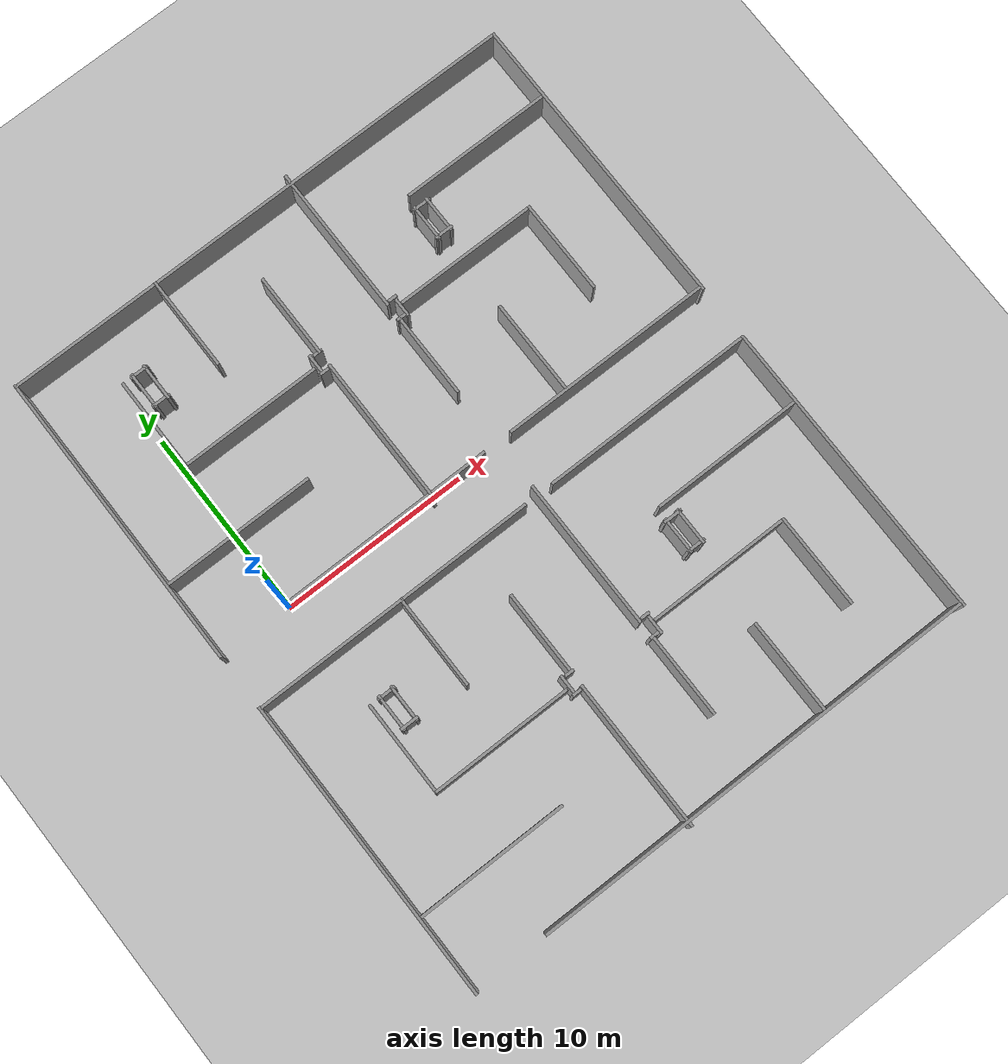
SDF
<sdf version="1.7">
 <world name="default">
  <model name="ground_plane">
   <static>1</static>
   <link name="link">
    <collision name="collision">
     <geometry><plane><normal>0 0 1</normal><size>100 100</size></plane></geometry>
     <surface>
      <contact><collide_bitmask>65535</collide_bitmask></contact>
      <friction><ode><mu>100</mu><mu2>50</mu2></ode></friction>
     </surface>
    </collision>
    <visual name="visual">
     <cast_shadows>0</cast_shadows>
     <geometry><plane><normal>0 0 1</normal><size>100 100</size></plane></geometry>
     <material>
      <script><uri>file://media/materials/scripts/gazebo.material</uri><name>Gazebo/Grey</name></script>
     </material>
    </visual>
   </link>
  </model>
  <model name="myroom_long_start">
   <pose>10.2269 7.86848 0 0 -0 0</pose>
   <link name="Wall_0_0">
    <collision name="Wall_0_0_Collision">
     <geometry><box><size>11.25 0.15 2.5</size></box></geometry>
     <pose>0 0 1.25 0 -0 0</pose>
    </collision>
    <visual name="Wall_0_0_Visual">
     <pose>0 0 1.25 0 -0 0</pose>
     <geometry><box><size>11.25 0.15 2.5</size></box></geometry>
     <material>
      <script><uri>file://media/materials/scripts/gazebo.material</uri><name>Gazebo/Grey</name></script>
      <ambient>1 1 1 1</ambient>
     </material>
     <meta><layer>0</layer></meta>
    </visual>
    <pose>-4.42088 -7.96278 0 0 -0 0</pose>
   </link>
   <link name="Wall_0_1">
    <collision name="Wall_0_1_Collision">
     <geometry><box><size>11.25 0.15 2.5</size></box></geometry>
     <pose>0 0 1.25 0 -0 0</pose>
    </collision>
    <visual name="Wall_0_1_Visual">
     <pose>0 0 1.25 0 -0 0</pose>
     <geometry><box><size>11.25 0.15 2.5</size></box></geometry>
     <material>
      <script><uri>file://media/materials/scripts/gazebo.material</uri><name>Gazebo/Grey</name></script>
      <ambient>1 1 1 1</ambient>
     </material>
     <meta><layer>0</layer></meta>
    </visual>
    <pose>8.32912 -7.96278 0 0 -0 0</pose>
   </link>
   <link name="Wall_10">
    <collision name="Wall_10_Collision">
     <geometry><box><size>8 0.15 2.5</size></box></geometry>
     <pose>0 0 1.25 0 -0 0</pose>
    </collision>
    <visual name="Wall_10_Visual">
     <pose>0 0 1.25 0 -0 0</pose>
     <geometry><box><size>8 0.15 2.5</size></box></geometry>
     <material>
      <script><uri>file://media/materials/scripts/gazebo.material</uri><name>Gazebo/Grey</name></script>
      <ambient>1 1 1 1</ambient>
     </material>
     <meta><layer>0</layer></meta>
    </visual>
    <pose>-9.91866 -3.96914 0 0 -0 0</pose>
   </link>
   <link name="Wall_12">
    <collision name="Wall_12_Collision">
     <geometry><box><size>8 0.15 2.5</size></box></geometry>
     <pose>0 0 1.25 0 -0 0</pose>
    </collision>
    <visual name="Wall_12_Visual">
     <pose>0 0 1.25 0 -0 0</pose>
     <geometry><box><size>8 0.15 2.5</size></box></geometry>
     <material>
      <script><uri>file://media/materials/scripts/gazebo.material</uri><name>Gazebo/Grey</name></script>
      <ambient>1 1 1 1</ambient>
     </material>
     <meta><layer>0</layer></meta>
    </visual>
    <pose>-1.94773 -4.26972 0 0 -0 -1.5708</pose>
   </link>
   <link name="Wall_14">
    <collision name="Wall_14_Collision">
     <geometry><box><size>8 0.15 2.5</size></box></geometry>
     <pose>0 0 1.25 0 -0 0</pose>
    </collision>
    <visual name="Wall_14_Visual">
     <pose>0 0 1.25 0 -0 0</pose>
     <geometry><box><size>8 0.15 2.5</size></box></geometry>
     <material>
      <script><uri>file://media/materials/scripts/gazebo.material</uri><name>Gazebo/Grey</name></script>
      <ambient>1 1 1 1</ambient>
     </material>
     <meta><layer>0</layer></meta>
    </visual>
    <pose>1.93832 4.2697 0 0 -0 -1.5708</pose>
   </link>
   <link name="Wall_16">
    <collision name="Wall_16_Collision">
     <geometry><box><size>5 0.15 2.5</size></box></geometry>
     <pose>0 0 1.25 0 -0 0</pose>
    </collision>
    <visual name="Wall_16_Visual">
     <pose>0 0 1.25 0 -0 0</pose>
     <geometry><box><size>5 0.15 2.5</size></box></geometry>
     <material>
      <script><uri>file://media/materials/scripts/gazebo.material</uri><name>Gazebo/Grey</name></script>
      <ambient>1 1 1 1</ambient>
     </material>
     <meta><layer>0</layer></meta>
    </visual>
    <pose>-10.0191 2.39188 0 0 -0 -1.5708</pose>
   </link>
   <link name="Wall_18">
    <collision name="Wall_18_Collision">
     <geometry><box><size>5 0.15 2.5</size></box></geometry>
     <pose>0 0 1.25 0 -0 0</pose>
    </collision>
    <visual name="Wall_18_Visual">
     <pose>0 0 1.25 0 -0 0</pose>
     <geometry><box><size>5 0.15 2.5</size></box></geometry>
     <material>
      <script><uri>file://media/materials/scripts/gazebo.material</uri><name>Gazebo/Grey</name></script>
      <ambient>1 1 1 1</ambient>
     </material>
     <meta><layer>0</layer></meta>
    </visual>
    <pose>10.0409 -2.44812 0 0 -0 -1.5708</pose>
   </link>
   <link name="Wall_2">
    <collision name="Wall_2_Collision">
     <geometry><box><size>16 0.15 2.5</size></box></geometry>
     <pose>0 0 1.25 0 -0 0</pose>
    </collision>
    <visual name="Wall_2_Visual">
     <pose>0 0 1.25 0 -0 0</pose>
     <geometry><box><size>16 0.15 2.5</size></box></geometry>
     <material>
      <script><uri>file://media/materials/scripts/gazebo.material</uri><name>Gazebo/Grey</name></script>
      <ambient>1 1 1 1</ambient>
     </material>
     <meta><layer>0</layer></meta>
    </visual>
    <pose>-13.999 -0.124192 0 0 -0 -1.5708</pose>
   </link>
   <link name="Wall_20">
    <collision name="Wall_20_Collision">
     <geometry><box><size>5 0.15 2.5</size></box></geometry>
     <pose>0 0 1.25 0 -0 0</pose>
    </collision>
    <visual name="Wall_20_Visual">
     <pose>0 0 1.25 0 -0 0</pose>
     <geometry><box><size>5 0.15 2.5</size></box></geometry>
     <material>
      <script><uri>file://media/materials/scripts/gazebo.material</uri><name>Gazebo/Grey</name></script>
      <ambient>1 1 1 1</ambient>
     </material>
     <meta><layer>0</layer></meta>
    </visual>
    <pose>-5.9791 5.35188 0 0 -0 -1.5708</pose>
   </link>
   <link name="Wall_22">
    <collision name="Wall_22_Collision">
     <geometry><box><size>5 0.15 2.5</size></box></geometry>
     <pose>0 0 1.25 0 -0 0</pose>
    </collision>
    <visual name="Wall_22_Visual">
     <pose>0 0 1.25 0 -0 0</pose>
     <geometry><box><size>5 0.15 2.5</size></box></geometry>
     <material>
      <script><uri>file://media/materials/scripts/gazebo.material</uri><name>Gazebo/Grey</name></script>
      <ambient>1 1 1 1</ambient>
     </material>
     <meta><layer>0</layer></meta>
    </visual>
    <pose>6.0009 -5.40812 0 0 -0 -1.5708</pose>
   </link>
   <link name="Wall_24">
    <collision name="Wall_24_Collision">
     <geometry><box><size>7.5 0.15 2.5</size></box></geometry>
     <pose>0 0 1.25 0 -0 0</pose>
    </collision>
    <visual name="Wall_24_Visual">
     <pose>0 0 1.25 0 -0 0</pose>
     <geometry><box><size>7.5 0.15 2.5</size></box></geometry>
     <material>
      <script><uri>file://media/materials/scripts/gazebo.material</uri><name>Gazebo/Grey</name></script>
      <ambient>1 1 1 1</ambient>
     </material>
     <meta><layer>0</layer></meta>
    </visual>
    <pose>-6.30686 -0.036992 0 0 -0 0</pose>
   </link>
   <link name="Wall_26">
    <collision name="Wall_26_Collision">
     <geometry><box><size>7.5 0.15 2.5</size></box></geometry>
     <pose>0 0 1.25 0 -0 0</pose>
    </collision>
    <visual name="Wall_26_Visual">
     <pose>0 0 1.25 0 -0 0</pose>
     <geometry><box><size>7.5 0.15 2.5</size></box></geometry>
     <material>
      <script><uri>file://media/materials/scripts/gazebo.material</uri><name>Gazebo/Grey</name></script>
      <ambient>1 1 1 1</ambient>
     </material>
     <meta><layer>0</layer></meta>
    </visual>
    <pose>6.23216 -0.017388 0 0 -0 0</pose>
   </link>
   <link name="Wall_28">
    <collision name="Wall_28_Collision">
     <geometry><box><size>4.5 0.15 2.5</size></box></geometry>
     <pose>0 0 1.25 0 -0 0</pose>
    </collision>
    <visual name="Wall_28_Visual">
     <pose>0 0 1.25 0 -0 0</pose>
     <geometry><box><size>4.5 0.15 2.5</size></box></geometry>
     <material>
      <script><uri>file://media/materials/scripts/gazebo.material</uri><name>Gazebo/Grey</name></script>
      <ambient>1 1 1 1</ambient>
     </material>
     <meta><layer>0</layer></meta>
    </visual>
    <pose>-1.92931 2.66336 0 0 -0 -1.5708</pose>
   </link>
   <link name="Wall_30">
    <collision name="Wall_30_Collision">
     <geometry><box><size>4.5 0.15 2.5</size></box></geometry>
     <pose>0 0 1.25 0 -0 0</pose>
    </collision>
    <visual name="Wall_30_Visual">
     <pose>0 0 1.25 0 -0 0</pose>
     <geometry><box><size>4.5 0.15 2.5</size></box></geometry>
     <material>
      <script><uri>file://media/materials/scripts/gazebo.material</uri><name>Gazebo/Grey</name></script>
      <ambient>1 1 1 1</ambient>
     </material>
     <meta><layer>0</layer></meta>
    </visual>
    <pose>1.97229 -2.7535 0 0 -0 -1.5708</pose>
   </link>
   <link name="Wall_32">
    <collision name="Wall_32_Collision">
     <geometry><box><size>0.5 0.15 2.5</size></box></geometry>
     <pose>0 0 1.25 0 -0 0</pose>
    </collision>
    <visual name="Wall_32_Visual">
     <pose>0 0 1.25 0 -0 0</pose>
     <geometry><box><size>0.5 0.15 2.5</size></box></geometry>
     <material>
      <script><uri>file://media/materials/scripts/gazebo.material</uri><name>Gazebo/Grey</name></script>
      <ambient>1 1 1 1</ambient>
     </material>
     <meta><layer>0</layer></meta>
    </visual>
    <pose>-2.30898 -0.421294 0 0 -0 0</pose>
   </link>
   <link name="Wall_34">
    <collision name="Wall_34_Collision">
     <geometry><box><size>1 0.15 2.5</size></box></geometry>
     <pose>0 0 1.25 0 -0 0</pose>
    </collision>
    <visual name="Wall_34_Visual">
     <pose>0 0 1.25 0 -0 0</pose>
     <geometry><box><size>1 0.15 2.5</size></box></geometry>
     <material>
      <script><uri>file://media/materials/scripts/gazebo.material</uri><name>Gazebo/Grey</name></script>
      <ambient>1 1 1 1</ambient>
     </material>
     <meta><layer>0</layer></meta>
    </visual>
    <pose>-2.40942 0.132494 0 0 -0 -1.5708</pose>
   </link>
   <link name="Wall_36">
    <collision name="Wall_36_Collision">
     <geometry><box><size>0.5 0.15 2.5</size></box></geometry>
     <pose>0 0 1.25 0 -0 0</pose>
    </collision>
    <visual name="Wall_36_Visual">
     <pose>0 0 1.25 0 -0 0</pose>
     <geometry><box><size>0.5 0.15 2.5</size></box></geometry>
     <material>
      <script><uri>file://media/materials/scripts/gazebo.material</uri><name>Gazebo/Grey</name></script>
      <ambient>1 1 1 1</ambient>
     </material>
     <meta><layer>0</layer></meta>
    </visual>
    <pose>-2.02952 0.481888 0 0 -0 0</pose>
   </link>
   <link name="Wall_38">
    <collision name="Wall_38_Collision">
     <geometry><box><size>0.5 0.15 2.5</size></box></geometry>
     <pose>0 0 1.25 0 -0 0</pose>
    </collision>
    <visual name="Wall_38_Visual">
     <pose>0 0 1.25 0 -0 0</pose>
     <geometry><box><size>0.5 0.15 2.5</size></box></geometry>
     <material>
      <script><uri>file://media/materials/scripts/gazebo.material</uri><name>Gazebo/Grey</name></script>
      <ambient>1 1 1 1</ambient>
     </material>
     <meta><layer>0</layer></meta>
    </visual>
    <pose>2.0697 -0.547396 0 0 -0 3.14159</pose>
   </link>
   <link name="Wall_4">
    <collision name="Wall_4_Collision">
     <geometry><box><size>28 0.15 2.5</size></box></geometry>
     <pose>0 0 1.25 0 -0 0</pose>
    </collision>
    <visual name="Wall_4_Visual">
     <pose>0 0 1.25 0 -0 0</pose>
     <geometry><box><size>28 0.15 2.5</size></box></geometry>
     <material>
      <script><uri>file://media/materials/scripts/gazebo.material</uri><name>Gazebo/Grey</name></script>
      <ambient>1 1 1 1</ambient>
     </material>
     <meta><layer>0</layer></meta>
    </visual>
    <pose>-0.05209 7.76604 0 0 -0 3.14159</pose>
   </link>
   <link name="Wall_40">
    <collision name="Wall_40_Collision">
     <geometry><box><size>1 0.15 2.5</size></box></geometry>
     <pose>0 0 1.25 0 -0 0</pose>
    </collision>
    <visual name="Wall_40_Visual">
     <pose>0 0 1.25 0 -0 0</pose>
     <geometry><box><size>1 0.15 2.5</size></box></geometry>
     <material>
      <script><uri>file://media/materials/scripts/gazebo.material</uri><name>Gazebo/Grey</name></script>
      <ambient>1 1 1 1</ambient>
     </material>
     <meta><layer>0</layer></meta>
    </visual>
    <pose>2.3863 -0.197994 0 0 -0 -1.5708</pose>
   </link>
   <link name="Wall_42">
    <collision name="Wall_42_Collision">
     <geometry><box><size>0.5 0.15 2.5</size></box></geometry>
     <pose>0 0 1.25 0 -0 0</pose>
    </collision>
    <visual name="Wall_42_Visual">
     <pose>0 0 1.25 0 -0 0</pose>
     <geometry><box><size>0.5 0.15 2.5</size></box></geometry>
     <material>
      <script><uri>file://media/materials/scripts/gazebo.material</uri><name>Gazebo/Grey</name></script>
      <ambient>1 1 1 1</ambient>
     </material>
     <meta><layer>0</layer></meta>
    </visual>
    <pose>2.28742 0.41876 0 0 -0 0</pose>
   </link>
   <link name="Wall_6">
    <collision name="Wall_6_Collision">
     <geometry><box><size>16 0.15 2.5</size></box></geometry>
     <pose>0 0 1.25 0 -0 0</pose>
    </collision>
    <visual name="Wall_6_Visual">
     <pose>0 0 1.25 0 -0 0</pose>
     <geometry><box><size>16 0.15 2.5</size></box></geometry>
     <material>
      <script><uri>file://media/materials/scripts/gazebo.material</uri><name>Gazebo/Grey</name></script>
      <ambient>1 1 1 1</ambient>
     </material>
     <meta><layer>0</layer></meta>
    </visual>
    <pose>13.999 -0.16442 0 0 -0 -1.5708</pose>
   </link>
   <link name="Wall_8">
    <collision name="Wall_8_Collision">
     <geometry><box><size>8 0.15 2.5</size></box></geometry>
     <pose>0 0 1.25 0 -0 0</pose>
    </collision>
    <visual name="Wall_8_Visual">
     <pose>0 0 1.25 0 -0 0</pose>
     <geometry><box><size>8 0.15 2.5</size></box></geometry>
     <material>
      <script><uri>file://media/materials/scripts/gazebo.material</uri><name>Gazebo/Grey</name></script>
      <ambient>1 1 1 1</ambient>
     </material>
     <meta><layer>0</layer></meta>
    </visual>
    <pose>9.91354 3.909 0 0 -0 0</pose>
   </link>
   <static>1</static>
  </model>
  <model name="half_wall">
   <pose>1.13136 13.7536 0 0 -0 0</pose>
   <link name="Wall_0">
    <collision name="Wall_0_Collision">
     <geometry><box><size>2 0.15 2.5</size></box></geometry>
     <pose>0 0 1.25 0 -0 0</pose>
    </collision>
    <visual name="Wall_0_Visual">
     <pose>0 0 1.25 0 -0 0</pose>
     <geometry><box><size>2 0.15 2.5</size></box></geometry>
     <material>
      <script><uri>file://media/materials/scripts/gazebo.material</uri><name>Gazebo/Grey</name></script>
      <ambient>1 1 1 1</ambient>
     </material>
     <meta><layer>0</layer></meta>
    </visual>
    <pose>-0.35 -1.9082 0 0 -0 1.5708</pose>
   </link>
   <link name="Wall_1">
    <collision name="Wall_1_Collision">
     <geometry><box><size>1 0.15 2.5</size></box></geometry>
     <pose>0 0 1.25 0 -0 0</pose>
    </collision>
    <visual name="Wall_1_Visual">
     <pose>0 0 1.25 0 -0 0</pose>
     <geometry><box><size>1 0.15 2.5</size></box></geometry>
     <material>
      <script><uri>file://media/materials/scripts/gazebo.material</uri><name>Gazebo/Grey</name></script>
      <ambient>1 1 1 1</ambient>
     </material>
     <meta><layer>0</layer></meta>
    </visual>
    <pose>0 -1.0582 0 0 -0 0</pose>
   </link>
   <link name="Wall_2">
    <collision name="Wall_2_Collision">
     <geometry><box><size>2 0.15 2.5</size></box></geometry>
     <pose>0 0 1.25 0 -0 0</pose>
    </collision>
    <visual name="Wall_2_Visual">
     <pose>0 0 1.25 0 -0 0</pose>
     <geometry><box><size>2 0.15 2.5</size></box></geometry>
     <material>
      <script><uri>file://media/materials/scripts/gazebo.material</uri><name>Gazebo/Grey</name></script>
      <ambient>1 1 1 1</ambient>
     </material>
     <meta><layer>0</layer></meta>
    </visual>
    <pose>0.35 -1.9082 0 0 -0 -1.5708</pose>
   </link>
   <link name="Wall_3">
    <collision name="Wall_3_Collision">
     <geometry><box><size>1 0.15 2.5</size></box></geometry>
     <pose>0 0 1.25 0 -0 0</pose>
    </collision>
    <visual name="Wall_3_Visual">
     <pose>0 0 1.25 0 -0 0</pose>
     <geometry><box><size>1 0.15 2.5</size></box></geometry>
     <material>
      <script><uri>file://media/materials/scripts/gazebo.material</uri><name>Gazebo/Grey</name></script>
      <ambient>1 1 1 1</ambient>
     </material>
     <meta><layer>0</layer></meta>
    </visual>
    <pose>0 -2.7582 0 0 -0 3.14159</pose>
   </link>
   <static>1</static>
  </model>
  <model name="half_wall_0">
   <pose>16.3699 12.1198 0 0 -0 0</pose>
   <link name="Wall_0">
    <collision name="Wall_0_Collision">
     <geometry><box><size>2 0.15 2.5</size></box></geometry>
     <pose>0 0 1.25 0 -0 0</pose>
    </collision>
    <visual name="Wall_0_Visual">
     <pose>0 0 1.25 0 -0 0</pose>
     <geometry><box><size>2 0.15 2.5</size></box></geometry>
     <material>
      <script><uri>file://media/materials/scripts/gazebo.material</uri><name>Gazebo/Grey</name></script>
      <ambient>1 1 1 1</ambient>
     </material>
     <meta><layer>0</layer></meta>
    </visual>
    <pose>-0.35 -1.9082 0 0 -0 1.5708</pose>
   </link>
   <link name="Wall_1">
    <collision name="Wall_1_Collision">
     <geometry><box><size>1 0.15 2.5</size></box></geometry>
     <pose>0 0 1.25 0 -0 0</pose>
    </collision>
    <visual name="Wall_1_Visual">
     <pose>0 0 1.25 0 -0 0</pose>
     <geometry><box><size>1 0.15 2.5</size></box></geometry>
     <material>
      <script><uri>file://media/materials/scripts/gazebo.material</uri><name>Gazebo/Grey</name></script>
      <ambient>1 1 1 1</ambient>
     </material>
     <meta><layer>0</layer></meta>
    </visual>
    <pose>0 -1.0582 0 0 -0 0</pose>
   </link>
   <link name="Wall_2">
    <collision name="Wall_2_Collision">
     <geometry><box><size>2 0.15 2.5</size></box></geometry>
     <pose>0 0 1.25 0 -0 0</pose>
    </collision>
    <visual name="Wall_2_Visual">
     <pose>0 0 1.25 0 -0 0</pose>
     <geometry><box><size>2 0.15 2.5</size></box></geometry>
     <material>
      <script><uri>file://media/materials/scripts/gazebo.material</uri><name>Gazebo/Grey</name></script>
      <ambient>1 1 1 1</ambient>
     </material>
     <meta><layer>0</layer></meta>
    </visual>
    <pose>0.35 -1.9082 0 0 -0 -1.5708</pose>
   </link>
   <link name="Wall_3">
    <collision name="Wall_3_Collision">
     <geometry><box><size>1 0.15 2.5</size></box></geometry>
     <pose>0 0 1.25 0 -0 0</pose>
    </collision>
    <visual name="Wall_3_Visual">
     <pose>0 0 1.25 0 -0 0</pose>
     <geometry><box><size>1 0.15 2.5</size></box></geometry>
     <material>
      <script><uri>file://media/materials/scripts/gazebo.material</uri><name>Gazebo/Grey</name></script>
      <ambient>1 1 1 1</ambient>
     </material>
     <meta><layer>0</layer></meta>
    </visual>
    <pose>0 -2.7582 0 0 -0 3.14159</pose>
   </link>
   <static>1</static>
  </model>
  <model name="myroom_long_start_2">
   <pose>10.2269 -10.939 0 0 -0 0</pose>
   <link name="Wall_0">
    <collision name="Wall_0_Collision">
     <geometry><box><size>24 0.15 2.5</size></box></geometry>
     <pose>0 0 1.25 0 -0 0</pose>
    </collision>
    <visual name="Wall_0_Visual">
     <pose>0 0 1.25 0 -0 0</pose>
     <geometry><box><size>24 0.15 2.5</size></box></geometry>
     <material>
      <script><uri>file://media/materials/scripts/gazebo.material</uri><name>Gazebo/Grey</name></script>
      <ambient>1 1 1 1</ambient>
     </material>
     <meta><layer>0</layer></meta>
    </visual>
    <pose>1.95412 -7.96278 0 0 -0 0</pose>
   </link>
   <link name="Wall_10">
    <collision name="Wall_10_Collision">
     <geometry><box><size>8 0.15 2.5</size></box></geometry>
     <pose>0 0 1.25 0 -0 0</pose>
    </collision>
    <visual name="Wall_10_Visual">
     <pose>0 0 1.25 0 -0 0</pose>
     <geometry><box><size>8 0.15 2.5</size></box></geometry>
     <material>
      <script><uri>file://media/materials/scripts/gazebo.material</uri><name>Gazebo/Grey</name></script>
      <ambient>1 1 1 1</ambient>
     </material>
     <meta><layer>0</layer></meta>
    </visual>
    <pose>-9.91866 -3.96914 0 0 -0 0</pose>
   </link>
   <link name="Wall_12">
    <collision name="Wall_12_Collision">
     <geometry><box><size>8 0.15 2.5</size></box></geometry>
     <pose>0 0 1.25 0 -0 0</pose>
    </collision>
    <visual name="Wall_12_Visual">
     <pose>0 0 1.25 0 -0 0</pose>
     <geometry><box><size>8 0.15 2.5</size></box></geometry>
     <material>
      <script><uri>file://media/materials/scripts/gazebo.material</uri><name>Gazebo/Grey</name></script>
      <ambient>1 1 1 1</ambient>
     </material>
     <meta><layer>0</layer></meta>
    </visual>
    <pose>-1.94773 -4.26972 0 0 -0 -1.5708</pose>
   </link>
   <link name="Wall_14">
    <collision name="Wall_14_Collision">
     <geometry><box><size>8 0.15 2.5</size></box></geometry>
     <pose>0 0 1.25 0 -0 0</pose>
    </collision>
    <visual name="Wall_14_Visual">
     <pose>0 0 1.25 0 -0 0</pose>
     <geometry><box><size>8 0.15 2.5</size></box></geometry>
     <material>
      <script><uri>file://media/materials/scripts/gazebo.material</uri><name>Gazebo/Grey</name></script>
      <ambient>1 1 1 1</ambient>
     </material>
     <meta><layer>0</layer></meta>
    </visual>
    <pose>1.93832 4.2697 0 0 -0 -1.5708</pose>
   </link>
   <link name="Wall_16">
    <collision name="Wall_16_Collision">
     <geometry><box><size>5 0.15 2.5</size></box></geometry>
     <pose>0 0 1.25 0 -0 0</pose>
    </collision>
    <visual name="Wall_16_Visual">
     <pose>0 0 1.25 0 -0 0</pose>
     <geometry><box><size>5 0.15 2.5</size></box></geometry>
     <material>
      <script><uri>file://media/materials/scripts/gazebo.material</uri><name>Gazebo/Grey</name></script>
      <ambient>1 1 1 1</ambient>
     </material>
     <meta><layer>0</layer></meta>
    </visual>
    <pose>-10.0191 2.39188 0 0 -0 -1.5708</pose>
   </link>
   <link name="Wall_18">
    <collision name="Wall_18_Collision">
     <geometry><box><size>5 0.15 2.5</size></box></geometry>
     <pose>0 0 1.25 0 -0 0</pose>
    </collision>
    <visual name="Wall_18_Visual">
     <pose>0 0 1.25 0 -0 0</pose>
     <geometry><box><size>5 0.15 2.5</size></box></geometry>
     <material>
      <script><uri>file://media/materials/scripts/gazebo.material</uri><name>Gazebo/Grey</name></script>
      <ambient>1 1 1 1</ambient>
     </material>
     <meta><layer>0</layer></meta>
    </visual>
    <pose>10.0409 -2.44812 0 0 -0 -1.5708</pose>
   </link>
   <link name="Wall_2">
    <collision name="Wall_2_Collision">
     <geometry><box><size>16 0.15 2.5</size></box></geometry>
     <pose>0 0 1.25 0 -0 0</pose>
    </collision>
    <visual name="Wall_2_Visual">
     <pose>0 0 1.25 0 -0 0</pose>
     <geometry><box><size>16 0.15 2.5</size></box></geometry>
     <material>
      <script><uri>file://media/materials/scripts/gazebo.material</uri><name>Gazebo/Grey</name></script>
      <ambient>1 1 1 1</ambient>
     </material>
     <meta><layer>0</layer></meta>
    </visual>
    <pose>-13.999 -0.124192 0 0 -0 -1.5708</pose>
   </link>
   <link name="Wall_20">
    <collision name="Wall_20_Collision">
     <geometry><box><size>5 0.15 2.5</size></box></geometry>
     <pose>0 0 1.25 0 -0 0</pose>
    </collision>
    <visual name="Wall_20_Visual">
     <pose>0 0 1.25 0 -0 0</pose>
     <geometry><box><size>5 0.15 2.5</size></box></geometry>
     <material>
      <script><uri>file://media/materials/scripts/gazebo.material</uri><name>Gazebo/Grey</name></script>
      <ambient>1 1 1 1</ambient>
     </material>
     <meta><layer>0</layer></meta>
    </visual>
    <pose>-5.9791 5.35188 0 0 -0 -1.5708</pose>
   </link>
   <link name="Wall_22">
    <collision name="Wall_22_Collision">
     <geometry><box><size>5 0.15 2.5</size></box></geometry>
     <pose>0 0 1.25 0 -0 0</pose>
    </collision>
    <visual name="Wall_22_Visual">
     <pose>0 0 1.25 0 -0 0</pose>
     <geometry><box><size>5 0.15 2.5</size></box></geometry>
     <material>
      <script><uri>file://media/materials/scripts/gazebo.material</uri><name>Gazebo/Grey</name></script>
      <ambient>1 1 1 1</ambient>
     </material>
     <meta><layer>0</layer></meta>
    </visual>
    <pose>6.0009 -5.40812 0 0 -0 -1.5708</pose>
   </link>
   <link name="Wall_24">
    <collision name="Wall_24_Collision">
     <geometry><box><size>7.5 0.15 2.5</size></box></geometry>
     <pose>0 0 1.25 0 -0 0</pose>
    </collision>
    <visual name="Wall_24_Visual">
     <pose>0 0 1.25 0 -0 0</pose>
     <geometry><box><size>7.5 0.15 2.5</size></box></geometry>
     <material>
      <script><uri>file://media/materials/scripts/gazebo.material</uri><name>Gazebo/Grey</name></script>
      <ambient>1 1 1 1</ambient>
     </material>
     <meta><layer>0</layer></meta>
    </visual>
    <pose>-6.30686 -0.036992 0 0 -0 0</pose>
   </link>
   <link name="Wall_26">
    <collision name="Wall_26_Collision">
     <geometry><box><size>7.5 0.15 2.5</size></box></geometry>
     <pose>0 0 1.25 0 -0 0</pose>
    </collision>
    <visual name="Wall_26_Visual">
     <pose>0 0 1.25 0 -0 0</pose>
     <geometry><box><size>7.5 0.15 2.5</size></box></geometry>
     <material>
      <script><uri>file://media/materials/scripts/gazebo.material</uri><name>Gazebo/Grey</name></script>
      <ambient>1 1 1 1</ambient>
     </material>
     <meta><layer>0</layer></meta>
    </visual>
    <pose>6.23216 -0.017388 0 0 -0 0</pose>
   </link>
   <link name="Wall_28">
    <collision name="Wall_28_Collision">
     <geometry><box><size>4.5 0.15 2.5</size></box></geometry>
     <pose>0 0 1.25 0 -0 0</pose>
    </collision>
    <visual name="Wall_28_Visual">
     <pose>0 0 1.25 0 -0 0</pose>
     <geometry><box><size>4.5 0.15 2.5</size></box></geometry>
     <material>
      <script><uri>file://media/materials/scripts/gazebo.material</uri><name>Gazebo/Grey</name></script>
      <ambient>1 1 1 1</ambient>
     </material>
     <meta><layer>0</layer></meta>
    </visual>
    <pose>-1.92931 2.66336 0 0 -0 -1.5708</pose>
   </link>
   <link name="Wall_30">
    <collision name="Wall_30_Collision">
     <geometry><box><size>4.5 0.15 2.5</size></box></geometry>
     <pose>0 0 1.25 0 -0 0</pose>
    </collision>
    <visual name="Wall_30_Visual">
     <pose>0 0 1.25 0 -0 0</pose>
     <geometry><box><size>4.5 0.15 2.5</size></box></geometry>
     <material>
      <script><uri>file://media/materials/scripts/gazebo.material</uri><name>Gazebo/Grey</name></script>
      <ambient>1 1 1 1</ambient>
     </material>
     <meta><layer>0</layer></meta>
    </visual>
    <pose>1.97229 -2.7535 0 0 -0 -1.5708</pose>
   </link>
   <link name="Wall_32">
    <collision name="Wall_32_Collision">
     <geometry><box><size>0.5 0.15 2.5</size></box></geometry>
     <pose>0 0 1.25 0 -0 0</pose>
    </collision>
    <visual name="Wall_32_Visual">
     <pose>0 0 1.25 0 -0 0</pose>
     <geometry><box><size>0.5 0.15 2.5</size></box></geometry>
     <material>
      <script><uri>file://media/materials/scripts/gazebo.material</uri><name>Gazebo/Grey</name></script>
      <ambient>1 1 1 1</ambient>
     </material>
     <meta><layer>0</layer></meta>
    </visual>
    <pose>-2.30898 -0.421294 0 0 -0 0</pose>
   </link>
   <link name="Wall_34">
    <collision name="Wall_34_Collision">
     <geometry><box><size>1 0.15 2.5</size></box></geometry>
     <pose>0 0 1.25 0 -0 0</pose>
    </collision>
    <visual name="Wall_34_Visual">
     <pose>0 0 1.25 0 -0 0</pose>
     <geometry><box><size>1 0.15 2.5</size></box></geometry>
     <material>
      <script><uri>file://media/materials/scripts/gazebo.material</uri><name>Gazebo/Grey</name></script>
      <ambient>1 1 1 1</ambient>
     </material>
     <meta><layer>0</layer></meta>
    </visual>
    <pose>-2.40942 0.132494 0 0 -0 -1.5708</pose>
   </link>
   <link name="Wall_36">
    <collision name="Wall_36_Collision">
     <geometry><box><size>0.5 0.15 2.5</size></box></geometry>
     <pose>0 0 1.25 0 -0 0</pose>
    </collision>
    <visual name="Wall_36_Visual">
     <pose>0 0 1.25 0 -0 0</pose>
     <geometry><box><size>0.5 0.15 2.5</size></box></geometry>
     <material>
      <script><uri>file://media/materials/scripts/gazebo.material</uri><name>Gazebo/Grey</name></script>
      <ambient>1 1 1 1</ambient>
     </material>
     <meta><layer>0</layer></meta>
    </visual>
    <pose>-2.02952 0.481888 0 0 -0 0</pose>
   </link>
   <link name="Wall_38">
    <collision name="Wall_38_Collision">
     <geometry><box><size>0.5 0.15 2.5</size></box></geometry>
     <pose>0 0 1.25 0 -0 0</pose>
    </collision>
    <visual name="Wall_38_Visual">
     <pose>0 0 1.25 0 -0 0</pose>
     <geometry><box><size>0.5 0.15 2.5</size></box></geometry>
     <material>
      <script><uri>file://media/materials/scripts/gazebo.material</uri><name>Gazebo/Grey</name></script>
      <ambient>1 1 1 1</ambient>
     </material>
     <meta><layer>0</layer></meta>
    </visual>
    <pose>2.0697 -0.547396 0 0 -0 3.14159</pose>
   </link>
   <link name="Wall_4_0">
    <collision name="Wall_4_0_Collision">
     <geometry><box><size>15.2562 0.15 2.5</size></box></geometry>
     <pose>0 0 1.25 0 -0 0</pose>
    </collision>
    <visual name="Wall_4_0_Visual">
     <pose>0 0 1.25 0 -0 0</pose>
     <geometry><box><size>15.2562 0.15 2.5</size></box></geometry>
     <material>
      <script><uri>file://media/materials/scripts/gazebo.material</uri><name>Gazebo/Grey</name></script>
      <ambient>1 1 1 1</ambient>
     </material>
     <meta><layer>0</layer></meta>
    </visual>
    <pose>-6.42399 7.76604 0 0 -0 3.14159</pose>
   </link>
   <link name="Wall_4_1">
    <collision name="Wall_4_1_Collision">
     <geometry><box><size>11.2438 0.15 2.5</size></box></geometry>
     <pose>0 0 1.25 0 -0 0</pose>
    </collision>
    <visual name="Wall_4_1_Visual">
     <pose>0 0 1.25 0 -0 0</pose>
     <geometry><box><size>11.2438 0.15 2.5</size></box></geometry>
     <material>
      <script><uri>file://media/materials/scripts/gazebo.material</uri><name>Gazebo/Grey</name></script>
      <ambient>1 1 1 1</ambient>
     </material>
     <meta><layer>0</layer></meta>
    </visual>
    <pose>8.32601 7.76604 0 0 -0 3.14159</pose>
   </link>
   <link name="Wall_40">
    <collision name="Wall_40_Collision">
     <geometry><box><size>1 0.15 2.5</size></box></geometry>
     <pose>0 0 1.25 0 -0 0</pose>
    </collision>
    <visual name="Wall_40_Visual">
     <pose>0 0 1.25 0 -0 0</pose>
     <geometry><box><size>1 0.15 2.5</size></box></geometry>
     <material>
      <script><uri>file://media/materials/scripts/gazebo.material</uri><name>Gazebo/Grey</name></script>
      <ambient>1 1 1 1</ambient>
     </material>
     <meta><layer>0</layer></meta>
    </visual>
    <pose>2.3863 -0.197994 0 0 -0 -1.5708</pose>
   </link>
   <link name="Wall_42">
    <collision name="Wall_42_Collision">
     <geometry><box><size>0.5 0.15 2.5</size></box></geometry>
     <pose>0 0 1.25 0 -0 0</pose>
    </collision>
    <visual name="Wall_42_Visual">
     <pose>0 0 1.25 0 -0 0</pose>
     <geometry><box><size>0.5 0.15 2.5</size></box></geometry>
     <material>
      <script><uri>file://media/materials/scripts/gazebo.material</uri><name>Gazebo/Grey</name></script>
      <ambient>1 1 1 1</ambient>
     </material>
     <meta><layer>0</layer></meta>
    </visual>
    <pose>2.28742 0.41876 0 0 -0 0</pose>
   </link>
   <link name="Wall_6">
    <collision name="Wall_6_Collision">
     <geometry><box><size>16 0.15 2.5</size></box></geometry>
     <pose>0 0 1.25 0 -0 0</pose>
    </collision>
    <visual name="Wall_6_Visual">
     <pose>0 0 1.25 0 -0 0</pose>
     <geometry><box><size>16 0.15 2.5</size></box></geometry>
     <material>
      <script><uri>file://media/materials/scripts/gazebo.material</uri><name>Gazebo/Grey</name></script>
      <ambient>1 1 1 1</ambient>
     </material>
     <meta><layer>0</layer></meta>
    </visual>
    <pose>13.999 -0.16442 0 0 -0 -1.5708</pose>
   </link>
   <link name="Wall_8">
    <collision name="Wall_8_Collision">
     <geometry><box><size>8 0.15 2.5</size></box></geometry>
     <pose>0 0 1.25 0 -0 0</pose>
    </collision>
    <visual name="Wall_8_Visual">
     <pose>0 0 1.25 0 -0 0</pose>
     <geometry><box><size>8 0.15 2.5</size></box></geometry>
     <material>
      <script><uri>file://media/materials/scripts/gazebo.material</uri><name>Gazebo/Grey</name></script>
      <ambient>1 1 1 1</ambient>
     </material>
     <meta><layer>0</layer></meta>
    </visual>
    <pose>9.91354 3.909 0 0 -0 0</pose>
   </link>
   <static>1</static>
  </model>
  <model name="half_wall_2">
   <pose>1.13136 -5.05388 0 0 -0 0</pose>
   <link name="Wall_0">
    <collision name="Wall_0_Collision">
     <geometry><box><size>2 0.15 2.5</size></box></geometry>
     <pose>0 0 1.25 0 -0 0</pose>
    </collision>
    <visual name="Wall_0_Visual">
     <pose>0 0 1.25 0 -0 0</pose>
     <geometry><box><size>2 0.15 2.5</size></box></geometry>
     <material>
      <script><uri>file://media/materials/scripts/gazebo.material</uri><name>Gazebo/Grey</name></script>
      <ambient>1 1 1 1</ambient>
     </material>
     <meta><layer>0</layer></meta>
    </visual>
    <pose>-0.35 -1.9082 0 0 -0 1.5708</pose>
   </link>
   <link name="Wall_1">
    <collision name="Wall_1_Collision">
     <geometry><box><size>1 0.15 2.5</size></box></geometry>
     <pose>0 0 1.25 0 -0 0</pose>
    </collision>
    <visual name="Wall_1_Visual">
     <pose>0 0 1.25 0 -0 0</pose>
     <geometry><box><size>1 0.15 2.5</size></box></geometry>
     <material>
      <script><uri>file://media/materials/scripts/gazebo.material</uri><name>Gazebo/Grey</name></script>
      <ambient>1 1 1 1</ambient>
     </material>
     <meta><layer>0</layer></meta>
    </visual>
    <pose>0 -1.0582 0 0 -0 0</pose>
   </link>
   <link name="Wall_2">
    <collision name="Wall_2_Collision">
     <geometry><box><size>2 0.15 2.5</size></box></geometry>
     <pose>0 0 1.25 0 -0 0</pose>
    </collision>
    <visual name="Wall_2_Visual">
     <pose>0 0 1.25 0 -0 0</pose>
     <geometry><box><size>2 0.15 2.5</size></box></geometry>
     <material>
      <script><uri>file://media/materials/scripts/gazebo.material</uri><name>Gazebo/Grey</name></script>
      <ambient>1 1 1 1</ambient>
     </material>
     <meta><layer>0</layer></meta>
    </visual>
    <pose>0.35 -1.9082 0 0 -0 -1.5708</pose>
   </link>
   <link name="Wall_3">
    <collision name="Wall_3_Collision">
     <geometry><box><size>1 0.15 2.5</size></box></geometry>
     <pose>0 0 1.25 0 -0 0</pose>
    </collision>
    <visual name="Wall_3_Visual">
     <pose>0 0 1.25 0 -0 0</pose>
     <geometry><box><size>1 0.15 2.5</size></box></geometry>
     <material>
      <script><uri>file://media/materials/scripts/gazebo.material</uri><name>Gazebo/Grey</name></script>
      <ambient>1 1 1 1</ambient>
     </material>
     <meta><layer>0</layer></meta>
    </visual>
    <pose>0 -2.7582 0 0 -0 3.14159</pose>
   </link>
   <static>1</static>
  </model>
  <model name="half_wall_0_2">
   <pose>16.3699 -6.68768 0 0 -0 0</pose>
   <link name="Wall_0">
    <collision name="Wall_0_Collision">
     <geometry><box><size>2 0.15 2.5</size></box></geometry>
     <pose>0 0 1.25 0 -0 0</pose>
    </collision>
    <visual name="Wall_0_Visual">
     <pose>0 0 1.25 0 -0 0</pose>
     <geometry><box><size>2 0.15 2.5</size></box></geometry>
     <material>
      <script><uri>file://media/materials/scripts/gazebo.material</uri><name>Gazebo/Grey</name></script>
      <ambient>1 1 1 1</ambient>
     </material>
     <meta><layer>0</layer></meta>
    </visual>
    <pose>-0.35 -1.9082 0 0 -0 1.5708</pose>
   </link>
   <link name="Wall_1">
    <collision name="Wall_1_Collision">
     <geometry><box><size>1 0.15 2.5</size></box></geometry>
     <pose>0 0 1.25 0 -0 0</pose>
    </collision>
    <visual name="Wall_1_Visual">
     <pose>0 0 1.25 0 -0 0</pose>
     <geometry><box><size>1 0.15 2.5</size></box></geometry>
     <material>
      <script><uri>file://media/materials/scripts/gazebo.material</uri><name>Gazebo/Grey</name></script>
      <ambient>1 1 1 1</ambient>
     </material>
     <meta><layer>0</layer></meta>
    </visual>
    <pose>0 -1.0582 0 0 -0 0</pose>
   </link>
   <link name="Wall_2">
    <collision name="Wall_2_Collision">
     <geometry><box><size>2 0.15 2.5</size></box></geometry>
     <pose>0 0 1.25 0 -0 0</pose>
    </collision>
    <visual name="Wall_2_Visual">
     <pose>0 0 1.25 0 -0 0</pose>
     <geometry><box><size>2 0.15 2.5</size></box></geometry>
     <material>
      <script><uri>file://media/materials/scripts/gazebo.material</uri><name>Gazebo/Grey</name></script>
      <ambient>1 1 1 1</ambient>
     </material>
     <meta><layer>0</layer></meta>
    </visual>
    <pose>0.35 -1.9082 0 0 -0 -1.5708</pose>
   </link>
   <link name="Wall_3">
    <collision name="Wall_3_Collision">
     <geometry><box><size>1 0.15 2.5</size></box></geometry>
     <pose>0 0 1.25 0 -0 0</pose>
    </collision>
    <visual name="Wall_3_Visual">
     <pose>0 0 1.25 0 -0 0</pose>
     <geometry><box><size>1 0.15 2.5</size></box></geometry>
     <material>
      <script><uri>file://media/materials/scripts/gazebo.material</uri><name>Gazebo/Grey</name></script>
      <ambient>1 1 1 1</ambient>
     </material>
     <meta><layer>0</layer></meta>
    </visual>
    <pose>0 -2.7582 0 0 -0 3.14159</pose>
   </link>
   <static>1</static>
  </model>
 </world>
</sdf>
